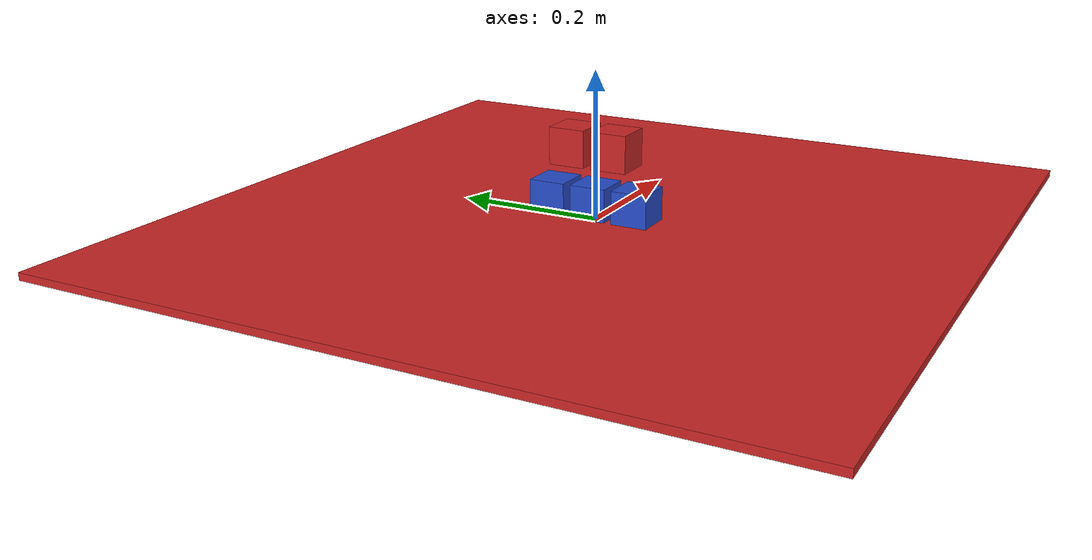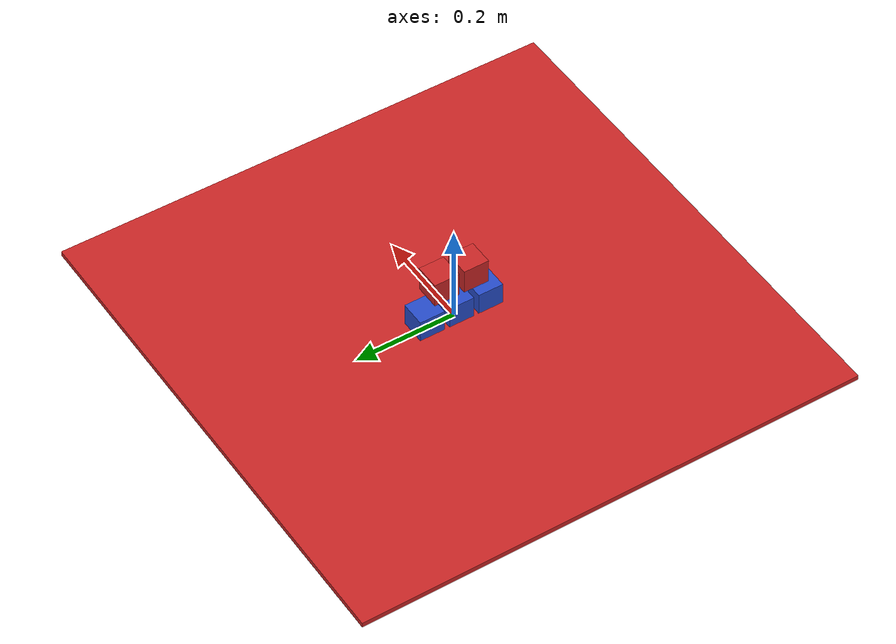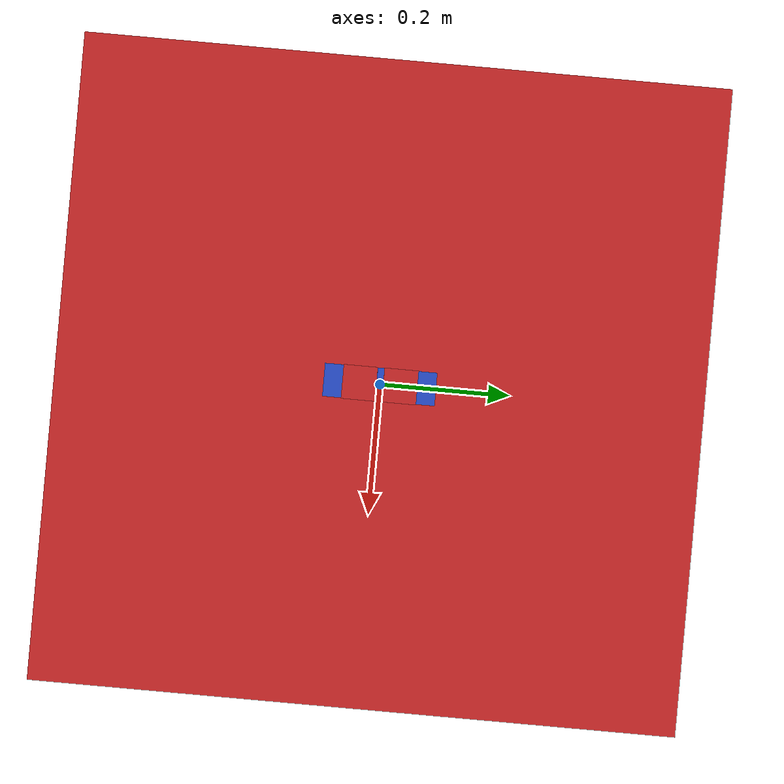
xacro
<?xml version="1.0"?>
<robot xmlns:xacro="http://www.ros.org/wiki/xacro" name="tower_of_hanoi">
  <link name="zone1">
    <visual>
      <origin xyz="0 0 0"/>
      <geometry>
        <box size="1 1 0.01" />
      </geometry>
    </visual>
    <inertial>
      <origin xyz="0 0 0.01" />
      <mass value="1.0" />
      <inertia  ixx="1.0" ixy="0.0"  ixz="0.0"  iyy="1.0"  iyz="0.0"  izz="1.0" />
    </inertial>
  </link>

  <joint name="join1" type="floating">
    <origin xyz="0 0 0" rpy="0 0 0"/>
    <parent link="zone1"/>
    <child link="box1"/>
  </joint>

  <link name="box1">
    <inertial>
      <origin xyz="0 0 0.025" />
      <mass value="1.0" />
      <inertia  ixx="1.0" ixy="0.0"  ixz="0.0"  iyy="1.0"  iyz="0.0"  izz="1.0" />
    </inertial>
    <visual>
      <origin xyz="0 0 0.025"/>
      <geometry>
        <box size="0.05 0.05 0.05" />
      </geometry>
    </visual>
    <collision>
      <origin xyz="0 0 0.025"/>
      <geometry>
        <box size="0.05 0.05 0.05" />
      </geometry>
    </collision>
  </link>

  <joint name="join2" type="floating">
    <origin xyz="0 0 0" rpy="0 0 0"/>
    <parent link="zone1"/>
    <child link="box2"/>
  </joint>

  <link name="box2">
    <inertial>
      <origin xyz="0 0.06 0.025" />
      <mass value="1.0" />
      <inertia  ixx="1.0" ixy="0.0"  ixz="0.0"  iyy="1.0"  iyz="0.0"  izz="1.0" />
    </inertial>
    <visual>
      <origin xyz="0 0.06 0.025"/>
      <geometry>
        <box size="0.05 0.05 0.05" />
      </geometry>
    </visual>
    <collision>
      <origin xyz="0 0.06 0.025"/>
      <geometry>
        <box size="0.05 0.05 0.05" />
      </geometry>
    </collision>
  </link>

  <joint name="join3" type="floating">
    <origin xyz="0 0 0" rpy="0 0 0"/>
    <parent link="zone1"/>
    <child link="box3"/>
  </joint>

  <link name="box3">
    <inertial>
      <origin xyz="0 -0.06 0.025" />
      <mass value="1.0" />
      <inertia  ixx="1.0" ixy="0.0"  ixz="0.0"  iyy="1.0"  iyz="0.0"  izz="1.0" />
    </inertial>
    <visual>
      <origin xyz="0 -0.06 0.025"/>
      <geometry>
        <box size="0.05 0.05 0.05" />
      </geometry>
    </visual>
    <collision>
      <origin xyz="0 -0.06 0.025"/>
      <geometry>
        <box size="0.05 0.05 0.05" />
      </geometry>
    </collision>
  </link>

 <joint name="join4" type="floating">
    <origin xyz="0 0.03 0.1" rpy="0 0 0"/>
    <parent link="zone1"/>
    <child link="box4"/>
  </joint>

 <link name="box4">
    <inertial>
      <origin xyz="0 0.0 0.0" />
      <mass value="1.0" />
      <inertia  ixx="1.0" ixy="0.0"  ixz="0.0"  iyy="1.0"  iyz="0.0"  izz="1.0" />
    </inertial>
    <visual>
      <origin xyz="0 0.0 0.0" />
      <geometry>
        <box size="0.05 0.05 0.05" />
      </geometry>
    </visual>
    <collision>
      <origin xyz="0 0.0 0.0" />
      <geometry>
        <box size="0.05 0.05 0.05" />
      </geometry>
    </collision>
  </link>

 <joint name="join5" type="floating">
    <origin xyz="0 -0.03 0.1" rpy="0 0 0"/>
    <parent link="zone1"/>
    <child link="box5"/>
  </joint>

 <link name="box5">
    <inertial>
      <origin xyz="0 0 0" />
      <mass value="1.0" />
      <inertia  ixx="1.0" ixy="0.0"  ixz="0.0"  iyy="1.0"  iyz="0.0"  izz="1.0" />
    </inertial>
    <visual>
      <origin xyz="0 0 0" />
      <geometry>
        <box size="0.05 0.05 0.05" />
      </geometry>
    </visual>
    <collision>
      <origin xyz="0 0 0" />
      <geometry>
        <box size="0.05 0.05 0.05" />
      </geometry>
    </collision>
  </link>

  <gazebo reference="zone1">
    <material>Gazebo/Red</material>
    <selfCollide>true</selfCollide>
  </gazebo>
  <gazebo reference="box1">
    <material>Gazebo/Blue</material>
    <selfCollide>true</selfCollide>
  </gazebo>
  <gazebo reference="box2">
    <material>Gazebo/Blue</material>
    <selfCollide>true</selfCollide>
  </gazebo>
  <gazebo reference="box3">
    <material>Gazebo/Blue</material>
    <selfCollide>true</selfCollide>
  </gazebo>
  <gazebo reference="box4">
    <material>Gazebo/Red</material>
    <selfCollide>true</selfCollide>
  </gazebo>
  <gazebo reference="box5">
    <material>Gazebo/Red</material>
    <selfCollide>true</selfCollide>
  </gazebo>

</robot>
